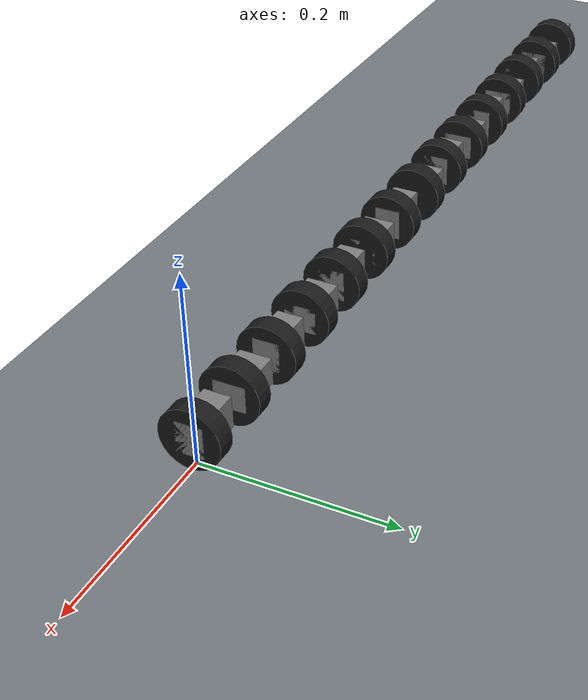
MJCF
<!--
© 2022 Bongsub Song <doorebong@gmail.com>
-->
<!-- All right reserved -->
<!-- Description : BRM snake robot Mujoco simulation xml -->
<!-- v20220614 : Sensor tag added -->

<mujoco model="snake-dgist">

    <visual>
        <map force="0.005" zfar="20"/>
    </visual>

    <asset>
        <texture type="skybox" builtin="gradient" rgb1="0.5 0.7 0.9" rgb2="0.1 0.1 0.1" width="512" height="512"/>

        <texture name="texplane" type="2d" builtin="checker" rgb1=".8 .8 .8" rgb2=".1 0.15 0.2" width="512" height="512" mark="cross" markrgb=".8 .8 .8"/>

        <texture name="texgeom" type="cube" builtin="flat" mark="cross" width="127" height="1278"
            rgb1="0.8 0.6 0.4" rgb2="0.8 0.6 0.4" markrgb="1 1 1" random="0.01"/>

        <material name="matplane" reflectance="0.3" texture="texplane" texrepeat="2 2" texuniform="true"/>

        <material name="matgeom" texture="texgeom" texuniform="true" rgba="0.8 0.6 .4 1"/>

        <hfield name="terrain" ncol="201" nrow="201" size="30 30 5 .1"/>
    </asset>

    <option timestep="0.01"/>

    <worldbody>

        <geom name="floor" pos="0 0 0" size="0 0 .25" type="plane" material="matplane" condim="3" friction="0.55 0.01 0.01"/>

        <light directional="false" diffuse="1 1 1" specular="0 0 0" pos="0 0 15" dir="0 0 -1" castshadow="false"/>

    <!-- Snake -->
        <body name="head" pos="0 0 0.033" euler="0 -90 0">
            <site name="head"/>
            <freejoint name="root"/>
            <geom type="cylinder" size="0.0325 0.01" rgba="0.1 0.1 0.1 1" mass="0.04" condim="6" friction="0.55 0.01 0.01"/>
            <geom type="box" size="0.017 0.01425 0.02525" pos="0 0 0.01525" mass="0.1"/>

            <body name="link1" pos="0 0 0.0685">
                <joint name="joint1" type="hinge" pos="0 0 -0.02925" axis="0 1 0" limited="true" range="-90 90" damping="0.6" armature="0.01" />
                <geom type="cylinder" size="0.0325 0.01" rgba="0.1 0.1 0.1 1" mass="0.04" condim="6" friction="0.55 0.01 0.01"/>
                <geom type="box" size="0.01425 0.017 0.02525" pos="0 0 0.01525" mass="0.1"/>

                <body name="link2" pos="0 0 0.0685">
                    <joint name="joint2" type="hinge" pos="0 0 -0.02925" axis="1 0 0" limited="true" range="-90 90" damping="0.6" armature="0.01" />
                    <geom type="cylinder" size="0.0325 0.01" rgba="0.1 0.1 0.1 1" mass="0.04" condim="6" friction="0.55 0.01 0.01"/>
                    <geom type="box" size="0.017 0.01425 0.02525" pos="0 0 0.01525" mass="0.1"/>

                    <body name="link3" pos="0 0 0.0685">
                        <joint name="joint3" type="hinge" pos="0 0 -0.02925" axis="0 1 0" limited="true" range="-90 90" damping="0.6" armature="0.01" />
                        <geom type="cylinder" size="0.0325 0.01" rgba="0.1 0.1 0.1 1" mass="0.04" condim="6" friction="0.55 0.01 0.01"/>
                        <geom type="box" size="0.01425 0.017 0.02525" pos="0 0 0.01525" mass="0.1"/>

                        <body name="link4" pos="0 0 0.0685">
                            <joint name="joint4" type="hinge" pos="0 0 -0.02925" axis="1 0 0" limited="true" range="-90 90" damping="0.6" armature="0.01" />
                            <geom type="cylinder" size="0.0325 0.01" rgba="0.1 0.1 0.1 1" mass="0.04" condim="6" friction="0.55 0.01 0.01"/>
                            <geom type="box" size="0.017 0.01425 0.02525" pos="0 0 0.01525" mass="0.1"/>

                            <body name="link5" pos="0 0 0.0685">
                                <joint name="joint5" type="hinge" pos="0 0 -0.02925" axis="0 1 0" limited="true" range="-90 90" damping="0.6" armature="0.01" />
                                <geom type="cylinder" size="0.0325 0.01" rgba="0.1 0.1 0.1 1" mass="0.04" condim="6" friction="0.55 0.01 0.01"/>
                                <geom type="box" size="0.01425 0.017 0.02525" pos="0 0 0.01525" mass="0.1"/>

                                <body name="link6" pos="0 0 0.0685">
                                    <joint name="joint6" type="hinge" pos="0 0 -0.02925" axis="1 0 0" limited="true" range="-90 90" damping="0.6" armature="0.01" />
                                    <geom type="cylinder" size="0.0325 0.01" rgba="0.1 0.1 0.1 1" mass="0.04" condim="6" friction="0.55 0.01 0.01"/>
                                    <geom type="box" size="0.017 0.01425 0.02525" pos="0 0 0.01525" mass="0.1"/>

                                    <body name="link7" pos="0 0 0.0685">
                                        <joint name="joint7" type="hinge" pos="0 0 -0.02925" axis="0 1 0" limited="true" range="-90 90" damping="0.6" armature="0.01" />
                                        <geom type="cylinder" size="0.0325 0.01" rgba="0.1 0.1 0.1 1" mass="0.04" condim="6" friction="0.55 0.01 0.01"/>
                                        <geom type="box" size="0.01425 0.017 0.02525" pos="0 0 0.01525" mass="0.1"/>

                                        <body name="link8" pos="0 0 0.0685">
                                            <joint name="joint8" type="hinge" pos="0 0 -0.02925" axis="1 0 0" limited="true" range="-90 90" damping="0.6" armature="0.01" />
                                            <geom type="cylinder" size="0.0325 0.01" rgba="0.1 0.1 0.1 1" mass="0.04" condim="6" friction="0.55 0.01 0.01"/>
                                            <geom type="box" size="0.017 0.01425 0.02525" pos="0 0 0.01525" mass="0.1"/>

                                            <body name="link9" pos="0 0 0.0685">
                                                <joint name="joint9" type="hinge" pos="0 0 -0.02925" axis="0 1 0" limited="true" range="-90 90" damping="0.6" armature="0.01" />
                                                <geom type="cylinder" size="0.0325 0.01" rgba="0.1 0.1 0.1 1" mass="0.04" condim="6" friction="0.55 0.01 0.01"/>
                                                <geom type="box" size="0.01425 0.017 0.02525" pos="0 0 0.01525" mass="0.1"/>

                                                <body name="link10" pos="0 0 0.0685">
                                                    <joint name="joint10" type="hinge" pos="0 0 -0.02925" axis="1 0 0" limited="true" range="-90 90" damping="0.6" armature="0.01" />
                                                    <geom type="cylinder" size="0.0325 0.01" rgba="0.1 0.1 0.1 1" mass="0.04" condim="6" friction="0.55 0.01 0.01"/>
                                                    <geom type="box" size="0.017 0.01425 0.02525" pos="0 0 0.01525" mass="0.1"/>

                                                    <body name="link11" pos="0 0 0.0685">
                                                        <joint name="joint11" type="hinge" pos="0 0 -0.02925" axis="0 1 0" limited="true" range="-90 90" damping="0.6" armature="0.01" />
                                                        <geom type="cylinder" size="0.0325 0.01" rgba="0.1 0.1 0.1 1" mass="0.04" condim="6" friction="0.55 0.01 0.01"/>
                                                        <geom type="box" size="0.01425 0.017 0.02525" pos="0 0 0.01525" mass="0.1"/>

                                                        <body name="link12" pos="0 0 0.0685">
                                                            <joint name="joint12" type="hinge" pos="0 0 -0.02925" axis="1 0 0" limited="true" range="-90 90" damping="0.6" armature="0.01" />
                                                            <geom type="cylinder" size="0.0325 0.01" rgba="0.1 0.1 0.1 1" mass="0.04" condim="6" friction="0.55 0.01 0.01"/>
                                                            <geom type="box" size="0.017 0.01425 0.02525" pos="0 0 0.01525" mass="0.1"/>

                                                            <body name="link13" pos="0 0 0.0685">
                                                                <joint name="joint13" type="hinge" pos="0 0 -0.02925" axis="0 1 0" limited="true" range="-90 90" damping="0.6" armature="0.01" />
                                                                <geom type="cylinder" size="0.0325 0.01" rgba="0.1 0.1 0.1 1" mass="0.04" condim="6" friction="0.55 0.01 0.01"/>
                                                                <geom type="box" size="0.01425 0.017 0.02525" pos="0 0 0.01525" mass="0.1"/>

                                                                <body name="tail" pos="0 0 0.0685">
                                                                    <joint name="joint14" type="hinge" pos="0 0 -0.02925" axis="1 0 0" limited="true" range="-90 90" damping="0.6" armature="0.01" />
                                                                    <geom type="cylinder" size="0.0325 0.01" rgba="0.1 0.1 0.1 1" mass="0.04" condim="6" friction="0.55 0.01 0.01"/>
                                                                    <geom type="box" size="0.017 0.01425 0.02525" pos="0 0 0.01525" mass="0.1"/>
                                                                </body>
                                                            </body>
                                                        </body>
                                                    </body>
                                                </body>
                                            </body>
                                        </body>
                                    </body>
                                </body>
                            </body>
                        </body>
                    </body>
                </body>
            </body>
        </body>
    </worldbody>

    <actuator>
        <position name="servo_1" ctrllimited="true" ctrlrange="-1.5708 1.5708" forcelimited="true" forcerange="-3.0 3.0" gear="1" joint="joint1" kp="70"/>
        <position name="servo_2" ctrllimited="true" ctrlrange="-1.5708 1.5708" forcelimited="true" forcerange="-3.0 3.0" gear="1" joint="joint2" kp="70"/>
        <position name="servo_3" ctrllimited="true" ctrlrange="-1.5708 1.5708" forcelimited="true" forcerange="-3.0 3.0" gear="1" joint="joint3" kp="70"/>
        <position name="servo_4" ctrllimited="true" ctrlrange="-1.5708 1.5708" forcelimited="true" forcerange="-3.0 3.0" gear="1" joint="joint4" kp="70"/>
        <position name="servo_5" ctrllimited="true" ctrlrange="-1.5708 1.5708" forcelimited="true" forcerange="-3.0 3.0" gear="1" joint="joint5" kp="70"/>
        <position name="servo_6" ctrllimited="true" ctrlrange="-1.5708 1.5708" forcelimited="true" forcerange="-3.0 3.0" gear="1" joint="joint6" kp="70"/>
        <position name="servo_7" ctrllimited="true" ctrlrange="-1.5708 1.5708" forcelimited="true" forcerange="-3.0 3.0" gear="1" joint="joint7" kp="70"/>
        <position name="servo_8" ctrllimited="true" ctrlrange="-1.5708 1.5708" forcelimited="true" forcerange="-3.0 3.0" gear="1" joint="joint8" kp="70"/>
        <position name="servo_9" ctrllimited="true" ctrlrange="-1.5708 1.5708" forcelimited="true" forcerange="-3.0 3.0" gear="1" joint="joint9" kp="70"/>
        <position name="servo_10" ctrllimited="true" ctrlrange="-1.5708 1.5708" forcelimited="true" forcerange="-3.0 3.0" gear="1" joint="joint10" kp="70"/>
        <position name="servo_11" ctrllimited="true" ctrlrange="-1.5708 1.5708" forcelimited="true" forcerange="-3.0 3.0" gear="1" joint="joint11" kp="70"/>
        <position name="servo_12" ctrllimited="true" ctrlrange="-1.5708 1.5708" forcelimited="true" forcerange="-3.0 3.0" gear="1" joint="joint12" kp="70"/>
        <position name="servo_13" ctrllimited="true" ctrlrange="-1.5708 1.5708" forcelimited="true" forcerange="-3.0 3.0" gear="1" joint="joint13" kp="70"/>
        <position name="servo_14" ctrllimited="true" ctrlrange="-1.5708 1.5708" forcelimited="true" forcerange="-3.0 3.0" gear="1" joint="joint14" kp="70"/>
    </actuator>

    <sensor>
        <accelerometer name="imu_accel" site="head"/>
        <gyro name="imu_gyro" site="head"/>

        <jointpos name="pos_joint1" joint="joint1"/>
        <jointpos name="pos_joint2" joint="joint2"/>
        <jointpos name="pos_joint3" joint="joint3"/>
        <jointpos name="pos_joint4" joint="joint4"/>
        <jointpos name="pos_joint5" joint="joint5"/>
        <jointpos name="pos_joint6" joint="joint6"/>
        <jointpos name="pos_joint7" joint="joint7"/>
        <jointpos name="pos_joint8" joint="joint8"/>
        <jointpos name="pos_joint9" joint="joint9"/>
        <jointpos name="pos_joint10" joint="joint10"/>
        <jointpos name="pos_joint11" joint="joint11"/>
        <jointpos name="pos_joint12" joint="joint12"/>
        <jointpos name="pos_joint13" joint="joint13"/>
        <jointpos name="pos_joint14" joint="joint14"/>

        <actuatorvel name="vel_joint1" actuator="servo_1"/>
        <actuatorvel name="vel_joint2" actuator="servo_2"/>
        <actuatorvel name="vel_joint3" actuator="servo_3"/>
        <actuatorvel name="vel_joint4" actuator="servo_4"/>
        <actuatorvel name="vel_joint5" actuator="servo_5"/>
        <actuatorvel name="vel_joint6" actuator="servo_6"/>
        <actuatorvel name="vel_joint7" actuator="servo_7"/>
        <actuatorvel name="vel_joint8" actuator="servo_8"/>
        <actuatorvel name="vel_joint9" actuator="servo_9"/>
        <actuatorvel name="vel_joint10" actuator="servo_10"/>
        <actuatorvel name="vel_joint11" actuator="servo_11"/>
        <actuatorvel name="vel_joint12" actuator="servo_12"/>
        <actuatorvel name="vel_joint13" actuator="servo_13"/>
        <actuatorvel name="vel_joint14" actuator="servo_14"/>

        <actuatorfrc name="torque_joint1" actuator="servo_1"/>
        <actuatorfrc name="torque_joint2" actuator="servo_2"/>
        <actuatorfrc name="torque_joint3" actuator="servo_3"/>
        <actuatorfrc name="torque_joint4" actuator="servo_4"/>
        <actuatorfrc name="torque_joint5" actuator="servo_5"/>
        <actuatorfrc name="torque_joint6" actuator="servo_6"/>
        <actuatorfrc name="torque_joint7" actuator="servo_7"/>
        <actuatorfrc name="torque_joint8" actuator="servo_8"/>
        <actuatorfrc name="torque_joint9" actuator="servo_9"/>
        <actuatorfrc name="torque_joint10" actuator="servo_10"/>
        <actuatorfrc name="torque_joint11" actuator="servo_11"/>
        <actuatorfrc name="torque_joint12" actuator="servo_12"/>
        <actuatorfrc name="torque_joint13" actuator="servo_13"/>
        <actuatorfrc name="torque_joint14" actuator="servo_14"/>

    </sensor>

</mujoco>
